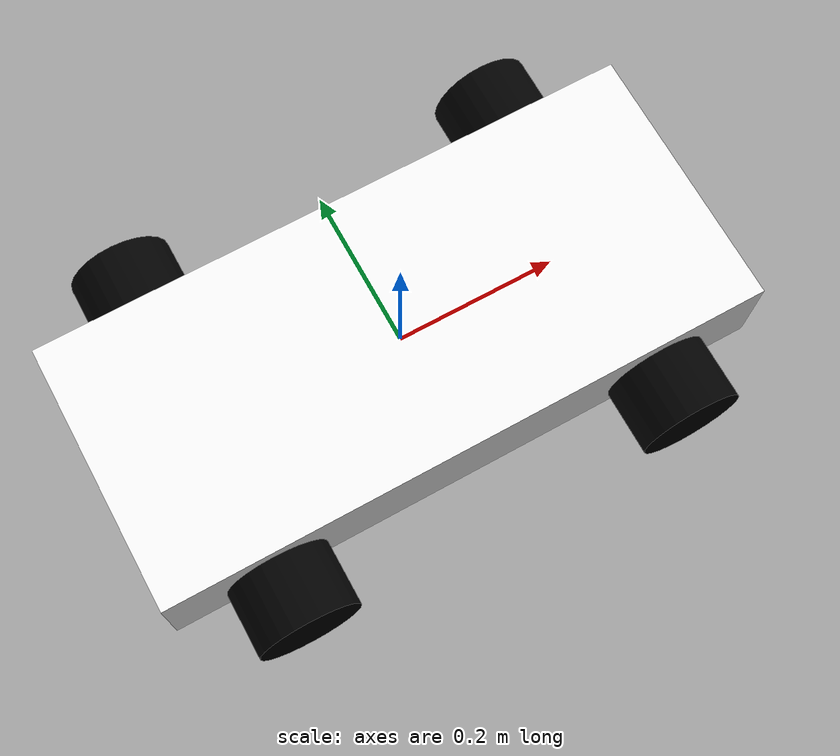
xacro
<?xml version="1.0"?>
<robot xmlns:xacro="http://www.ros.org/wiki/xacro">

<xacro:include filename="inertial_macros.xacro"/>
<xacro:include filename="robot_macros.xacro"/>

<material name="white">
    <color rgba="1 1 1 1"/>
</material>

<material name="black">
    <color rgba="0 0 0 1"/>
</material>

<material name="red">
    <color rgba="0.5 0 0 1"/>
</material>

<!-- BASE LINK -->
<link name="base_link">
    <visual>
    <origin xyz="0 0 0" rpy="0 0 0"/>
      <geometry>
        <box size="0.75 0.33 0.12"/>
      </geometry>
      <material name="white"/>
    </visual>
    <collision>
      <origin xyz="0 0 0" rpy="0 0 0"/>
        <geometry>
          <box size="0.75 0.33 0.12"/>
        </geometry>
      </collision>

      <xacro:inertial_box mass="5" x="0.75" y="0.33" z="0.12">
        <origin xyz="0 0 0" rpy="0 0 0"/>
      </xacro:inertial_box>
  </link>

  <gazebo reference="base_link">
      <material>Gazebo/SkyBlue</material>
  </gazebo>

<!-- BASE FOOTPRINT -->
<link name="base_footprint">
</link>

<joint name="base_footprint_joint" type="fixed">
  <parent link="base_link"/>
  <child link="base_footprint"/>
  <origin xyz="0 0 0"/>
</joint>

<!-- LEFT WHEEL FRONT -->
<link name="left_wheel_front">
  <visual>
      <origin xyz="0 0 0" rpy="0 0 0"/>
      <geometry>
          <cylinder radius="0.0625" length="0.08"/>
      </geometry>
      <material name="black"/>
  </visual>
  <collision>
      <origin xyz="0 0 0" rpy="0 0 0"/>
      <geometry>
          <cylinder radius="0.0625" length="0.08"/>
      </geometry>
  </collision>

  <xacro:inertial_cylinder mass="0.5" radius="0.0625" length="0.08">
      <origin xyz="0 0 0" rpy="0 0 0"/>
  </xacro:inertial_cylinder>
</link>

<joint name="left_wheel_front" type="continuous">
  <parent link="base_link"/>
  <child link="left_wheel_front"/>
    <origin xyz="0.245 0.205 -0.02" rpy="${3*pi/2} ${pi} 0"/>
    <axis xyz="0 0 1"/>
</joint>

  <gazebo reference="left_wheel_front">
    <material>Gazebo/DarkGrey</material>
  </gazebo>

  <!-- LEFT WHEEL BACK -->
<link name="left_wheel_back">
  <visual>
      <origin xyz="0 0 0" rpy="0 0 0"/>
      <geometry>
          <cylinder radius="0.0625" length="0.08"/>
      </geometry>
      <material name="black"/>
  </visual>
  <collision>
      <origin xyz="0 0 0" rpy="0 0 0"/>
      <geometry>
          <cylinder radius="0.0625" length="0.08"/>
      </geometry>
  </collision>

  <xacro:inertial_cylinder mass="0.5" radius="0.0625" length="0.08">
      <origin xyz="0 0 0" rpy="0 0 0"/>
  </xacro:inertial_cylinder>
</link>

<joint name="left_wheel_back" type="continuous">
  <parent link="base_link"/>
  <child link="left_wheel_back"/>
    <origin xyz="-0.245 0.205 -0.02" rpy="${3*pi/2} ${pi} 0"/>
    <axis xyz="0 0 1"/>
</joint>

  <gazebo reference="left_wheel_back">
    <material>Gazebo/DarkGrey</material>
  </gazebo>

<!-- RIGHT WHEEL FRONT -->
<link name="right_wheel_front">
  <visual>
      <origin xyz="0 0 0" rpy="0 0 0"/>
      <geometry>
          <cylinder radius="0.0625" length="0.08"/>
      </geometry>
      <material name="black"/>
  </visual>
  <collision>
      <origin xyz="0 0 0" rpy="0 0 0"/>
      <geometry>
          <cylinder radius="0.0625" length="0.08"/>
      </geometry>
  </collision>

  <xacro:inertial_cylinder mass="0.5" radius="0.0625" length="0.08">
      <origin xyz="0 0 0" rpy="0 0 0"/>
  </xacro:inertial_cylinder>
</link>

<joint name="right_wheel_front" type="continuous">
  <parent link="base_link"/>
  <child link="right_wheel_front"/>
    <origin xyz="0.245 -0.205 -0.02" rpy="${pi/2} 0 0"/>
    <axis xyz="0 0 1"/>
</joint>

  <gazebo reference="right_wheel_front">
    <material>Gazebo/DarkGrey</material>
  </gazebo>

<!-- RIGHT WHEEL BACK -->
<link name="right_wheel_back">
  <visual>
      <origin xyz="0 0 0" rpy="0 0 0"/>
      <geometry>
          <cylinder radius="0.0625" length="0.08"/>
      </geometry>
      <material name="black"/>
  </visual>
  <collision>
      <origin xyz="0 0 0" rpy="0 0 0"/>
      <geometry>
          <cylinder radius="0.0625" length="0.08"/>
      </geometry>
  </collision>

  <xacro:inertial_cylinder mass="0.5" radius="0.0625" length="0.08">
      <origin xyz="0 0 0" rpy="0 0 0"/>
  </xacro:inertial_cylinder>
</link>

<joint name="right_wheel_back" type="continuous">
  <parent link="base_link"/>
  <child link="right_wheel_back"/>
    <origin xyz="-0.245 -0.205 -0.02" rpy="${3*pi/2} ${pi} 0"/>
    <axis xyz="0 0 1"/>
</joint>

  <gazebo reference="right_wheel_back">
    <material>Gazebo/DarkGrey</material>
  </gazebo>

<!-- LEFT WHEEL FRONT -->

<!-- LEFT WHEEL BACK -->

<!-- RIGHT WHEEL FRONT -->

<!-- RIGHT WHEEL BACK -->

</robot>
